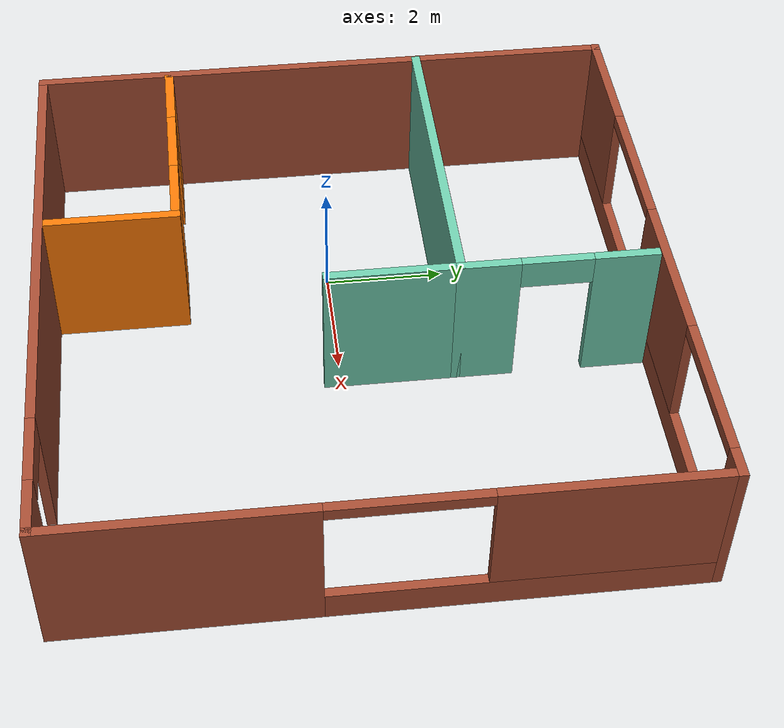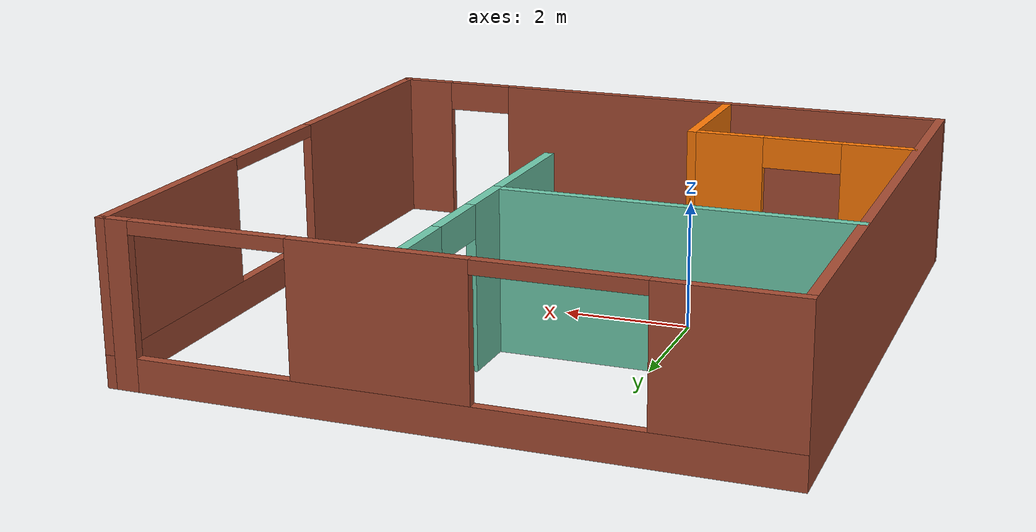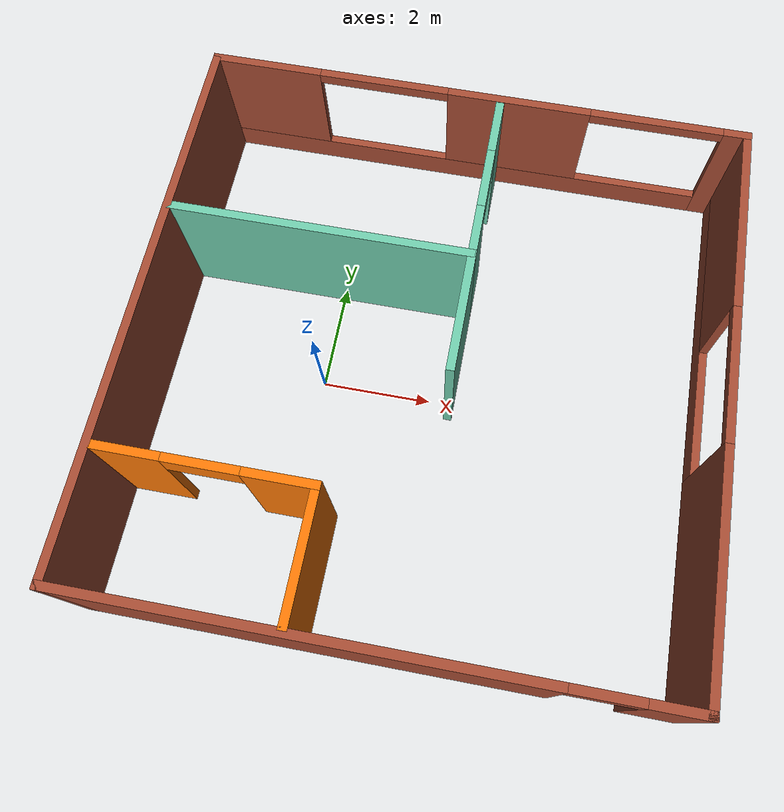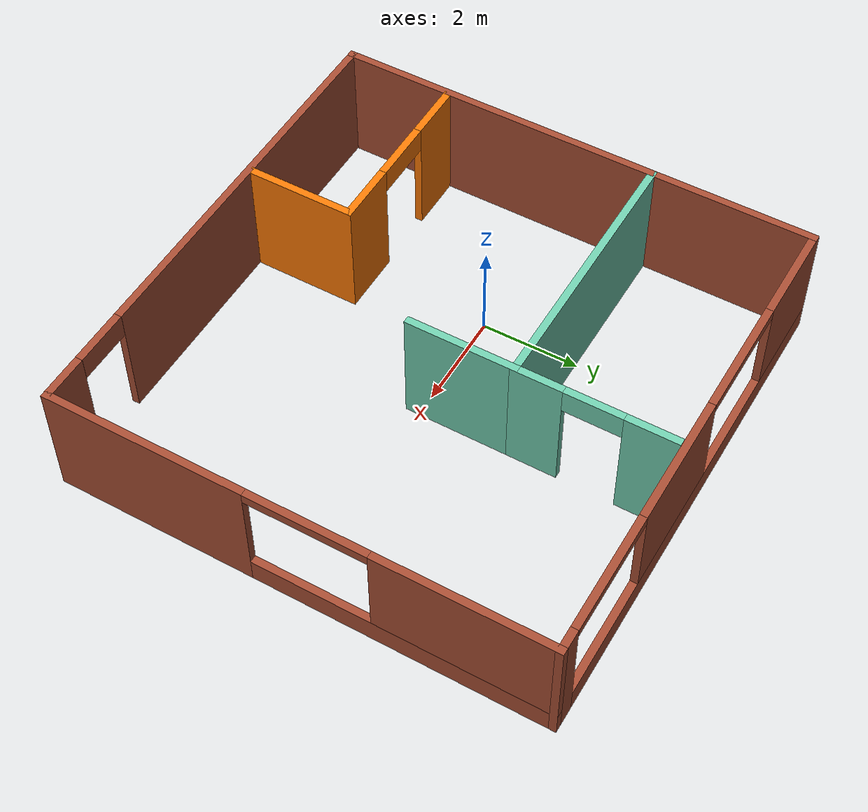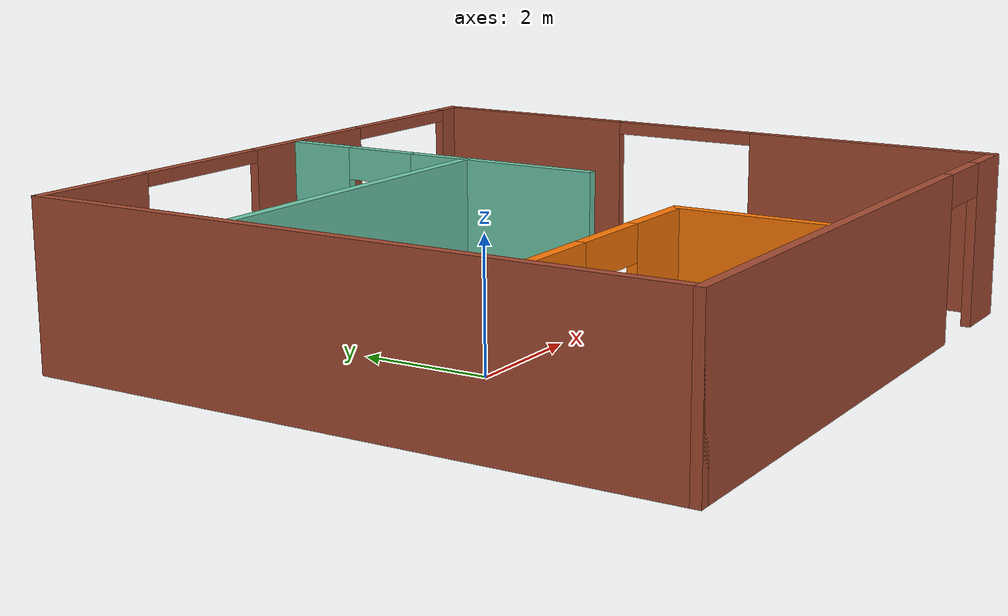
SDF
<?xml version='1.0'?>
<sdf version='1.7'>
  <model name='Building'>
    <pose>1.94951 0.222588 0 0 -0 0</pose>
    <link name='Wall_10'>
      <pose>-0 4.925 0 0 -0 3.14159</pose>
      <visual name='Wall_10_Visual_0'>
        <pose>-4.74655 0 1.25 0 -0 0</pose>
        <geometry>
          <box>
            <size>0.506908 0.15 2.5</size>
          </box>
        </geometry>
        <material>
          <script>
            <uri>file://media/materials/scripts/gazebo.material</uri>
            <name>Gazebo/Bricks</name>
          </script>
          <ambient>1 1 1 1</ambient>
        </material>
        <meta>
          <layer>0</layer>
        </meta>
      </visual>
      <collision name='Wall_10_Collision_0'>
        <geometry>
          <box>
            <size>0.506908 0.15 2.5</size>
          </box>
        </geometry>
        <pose>-4.74655 0 1.25 0 -0 0</pose>
      </collision>
      <visual name='Wall_10_Visual_1'>
        <pose>0.253454 0 0.25 0 -0 0</pose>
        <geometry>
          <box>
            <size>9.49309 0.15 0.5</size>
          </box>
        </geometry>
        <material>
          <script>
            <uri>file://media/materials/scripts/gazebo.material</uri>
            <name>Gazebo/Bricks</name>
          </script>
          <ambient>1 1 1 1</ambient>
        </material>
        <meta>
          <layer>0</layer>
        </meta>
      </visual>
      <collision name='Wall_10_Collision_1'>
        <geometry>
          <box>
            <size>9.49309 0.15 0.5</size>
          </box>
        </geometry>
        <pose>0.253454 0 0.25 0 -0 0</pose>
      </collision>
      <visual name='Wall_10_Visual_2'>
        <pose>-0.778092 0 1.5 0 -0 0</pose>
        <geometry>
          <box>
            <size>2.63 0.15 2</size>
          </box>
        </geometry>
        <material>
          <script>
            <uri>file://media/materials/scripts/gazebo.material</uri>
            <name>Gazebo/Bricks</name>
          </script>
          <ambient>1 1 1 1</ambient>
        </material>
        <meta>
          <layer>0</layer>
        </meta>
      </visual>
      <collision name='Wall_10_Collision_2'>
        <geometry>
          <box>
            <size>2.63 0.15 2</size>
          </box>
        </geometry>
        <pose>-0.778092 0 1.5 0 -0 0</pose>
      </collision>
      <visual name='Wall_10_Visual_3'>
        <pose>3.96845 0 1.5 0 -0 0</pose>
        <geometry>
          <box>
            <size>2.06309 0.15 2</size>
          </box>
        </geometry>
        <material>
          <script>
            <uri>file://media/materials/scripts/gazebo.material</uri>
            <name>Gazebo/Bricks</name>
          </script>
          <ambient>1 1 1 1</ambient>
        </material>
        <meta>
          <layer>0</layer>
        </meta>
      </visual>
      <collision name='Wall_10_Collision_3'>
        <geometry>
          <box>
            <size>2.06309 0.15 2</size>
          </box>
        </geometry>
        <pose>3.96845 0 1.5 0 -0 0</pose>
      </collision>
      <visual name='Wall_10_Visual_4'>
        <pose>-3.29309 0 2.4 0 -0 0</pose>
        <geometry>
          <box>
            <size>2.4 0.15 0.2</size>
          </box>
        </geometry>
        <material>
          <script>
            <uri>file://media/materials/scripts/gazebo.material</uri>
            <name>Gazebo/Bricks</name>
          </script>
          <ambient>1 1 1 1</ambient>
        </material>
        <meta>
          <layer>0</layer>
        </meta>
      </visual>
      <collision name='Wall_10_Collision_4'>
        <geometry>
          <box>
            <size>2.4 0.15 0.2</size>
          </box>
        </geometry>
        <pose>-3.29309 0 2.4 0 -0 0</pose>
      </collision>
      <visual name='Wall_10_Visual_5'>
        <pose>1.73691 0 2.4 0 -0 0</pose>
        <geometry>
          <box>
            <size>2.4 0.15 0.2</size>
          </box>
        </geometry>
        <material>
          <script>
            <uri>file://media/materials/scripts/gazebo.material</uri>
            <name>Gazebo/Bricks</name>
          </script>
          <ambient>1 1 1 1</ambient>
        </material>
        <meta>
          <layer>0</layer>
        </meta>
      </visual>
      <collision name='Wall_10_Collision_5'>
        <geometry>
          <box>
            <size>2.4 0.15 0.2</size>
          </box>
        </geometry>
        <pose>1.73691 0 2.4 0 -0 0</pose>
      </collision>
    </link>
    <link name='Wall_12'>
      <collision name='Wall_12_Collision'>
        <geometry>
          <box>
            <size>10 0.15 2.5</size>
          </box>
        </geometry>
        <pose>0 0 1.25 0 -0 0</pose>
      </collision>
      <visual name='Wall_12_Visual'>
        <pose>0 0 1.25 0 -0 0</pose>
        <geometry>
          <box>
            <size>10 0.15 2.5</size>
          </box>
        </geometry>
        <material>
          <script>
            <uri>file://media/materials/scripts/gazebo.material</uri>
            <name>Gazebo/Bricks</name>
          </script>
          <ambient>1 1 1 1</ambient>
        </material>
        <meta>
          <layer>0</layer>
        </meta>
      </visual>
      <pose>-4.925 -0 0 0 -0 1.5708</pose>
    </link>
    <link name='Wall_22'>
      <pose>-3.0416 -2.72457 0 0 -0 0</pose>
      <visual name='Wall_22_Visual_0'>
        <pose>-1.27765 0 1.25 0 -0 0</pose>
        <geometry>
          <box>
            <size>1.19469 0.15 2.5</size>
          </box>
        </geometry>
        <material>
          <script>
            <uri>file://media/materials/scripts/gazebo.material</uri>
            <name>Gazebo/Grey</name>
          </script>
          <ambient>0.996078 0.47451 0.0196078 1</ambient>
        </material>
        <meta>
          <layer>0</layer>
        </meta>
      </visual>
      <collision name='Wall_22_Collision_0'>
        <geometry>
          <box>
            <size>1.19469 0.15 2.5</size>
          </box>
        </geometry>
        <pose>-1.27765 0 1.25 0 -0 0</pose>
      </collision>
      <visual name='Wall_22_Visual_1'>
        <pose>1.23734 0 1.25 0 -0 0</pose>
        <geometry>
          <box>
            <size>1.27531 0.15 2.5</size>
          </box>
        </geometry>
        <material>
          <script>
            <uri>file://media/materials/scripts/gazebo.material</uri>
            <name>Gazebo/Grey</name>
          </script>
          <ambient>0.996078 0.47451 0.0196078 1</ambient>
        </material>
        <meta>
          <layer>0</layer>
        </meta>
      </visual>
      <collision name='Wall_22_Collision_1'>
        <geometry>
          <box>
            <size>1.27531 0.15 2.5</size>
          </box>
        </geometry>
        <pose>1.23734 0 1.25 0 -0 0</pose>
      </collision>
      <visual name='Wall_22_Visual_2'>
        <pose>-0.040311 0 2.25 0 -0 0</pose>
        <geometry>
          <box>
            <size>1.28 0.15 0.5</size>
          </box>
        </geometry>
        <material>
          <script>
            <uri>file://media/materials/scripts/gazebo.material</uri>
            <name>Gazebo/Grey</name>
          </script>
          <ambient>0.996078 0.47451 0.0196078 1</ambient>
        </material>
        <meta>
          <layer>0</layer>
        </meta>
      </visual>
      <collision name='Wall_22_Collision_2'>
        <geometry>
          <box>
            <size>1.28 0.15 0.5</size>
          </box>
        </geometry>
        <pose>-0.040311 0 2.25 0 -0 0</pose>
      </collision>
    </link>
    <link name='Wall_27'>
      <collision name='Wall_27_Collision'>
        <geometry>
          <box>
            <size>2.25 0.15 2.5</size>
          </box>
        </geometry>
        <pose>0 0 1.25 0 -0 0</pose>
      </collision>
      <visual name='Wall_27_Visual'>
        <pose>0 0 1.25 0 -0 0</pose>
        <geometry>
          <box>
            <size>2.25 0.15 2.5</size>
          </box>
        </geometry>
        <material>
          <script>
            <uri>file://media/materials/scripts/gazebo.material</uri>
            <name>Gazebo/Grey</name>
          </script>
          <ambient>0.996078 0.47451 0.0196078 1</ambient>
        </material>
        <meta>
          <layer>0</layer>
        </meta>
      </visual>
      <pose>-1.2416 -3.77457 0 0 -0 -1.5708</pose>
    </link>
    <link name='Wall_29'>
      <collision name='Wall_29_Collision'>
        <geometry>
          <box>
            <size>5.5 0.15 2.5</size>
          </box>
        </geometry>
        <pose>0 0 1.25 0 -0 0</pose>
      </collision>
      <visual name='Wall_29_Visual'>
        <pose>0 0 1.25 0 -0 0</pose>
        <geometry>
          <box>
            <size>5.5 0.15 2.5</size>
          </box>
        </geometry>
        <material>
          <script>
            <uri>file://media/materials/scripts/gazebo.material</uri>
            <name>Gazebo/Grey</name>
          </script>
          <ambient>0.435294 0.796078 0.67451 1</ambient>
        </material>
        <meta>
          <layer>0</layer>
        </meta>
      </visual>
      <pose>-2.23191 1.66808 0 0 -0 0</pose>
    </link>
    <link name='Wall_3'>
      <pose>-0 -4.925 0 0 -0 0</pose>
      <visual name='Wall_3_Visual_0'>
        <pose>-1.05345 0 1.25 0 -0 0</pose>
        <geometry>
          <box>
            <size>7.89309 0.15 2.5</size>
          </box>
        </geometry>
        <material>
          <script>
            <uri>file://media/materials/scripts/gazebo.material</uri>
            <name>Gazebo/Bricks</name>
          </script>
          <ambient>1 1 1 1</ambient>
        </material>
        <meta>
          <layer>0</layer>
        </meta>
      </visual>
      <collision name='Wall_3_Collision_0'>
        <geometry>
          <box>
            <size>7.89309 0.15 2.5</size>
          </box>
        </geometry>
        <pose>-1.05345 0 1.25 0 -0 0</pose>
      </collision>
      <visual name='Wall_3_Visual_1'>
        <pose>4.51155 0 1.25 0 -0 0</pose>
        <geometry>
          <box>
            <size>0.976908 0.15 2.5</size>
          </box>
        </geometry>
        <material>
          <script>
            <uri>file://media/materials/scripts/gazebo.material</uri>
            <name>Gazebo/Bricks</name>
          </script>
          <ambient>1 1 1 1</ambient>
        </material>
        <meta>
          <layer>0</layer>
        </meta>
      </visual>
      <collision name='Wall_3_Collision_1'>
        <geometry>
          <box>
            <size>0.976908 0.15 2.5</size>
          </box>
        </geometry>
        <pose>4.51155 0 1.25 0 -0 0</pose>
      </collision>
      <visual name='Wall_3_Visual_2'>
        <pose>3.45809 0 2.25 0 -0 0</pose>
        <geometry>
          <box>
            <size>1.13 0.15 0.5</size>
          </box>
        </geometry>
        <material>
          <script>
            <uri>file://media/materials/scripts/gazebo.material</uri>
            <name>Gazebo/Bricks</name>
          </script>
          <ambient>1 1 1 1</ambient>
        </material>
        <meta>
          <layer>0</layer>
        </meta>
      </visual>
      <collision name='Wall_3_Collision_2'>
        <geometry>
          <box>
            <size>1.13 0.15 0.5</size>
          </box>
        </geometry>
        <pose>3.45809 0 2.25 0 -0 0</pose>
      </collision>
    </link>
    <link name='Wall_31'>
      <collision name='Wall_31_Collision'>
        <geometry>
          <box>
            <size>2.25 0.15 2.5</size>
          </box>
        </geometry>
        <pose>0 0 1.25 0 -0 0</pose>
      </collision>
      <visual name='Wall_31_Visual'>
        <pose>0 0 1.25 0 -0 0</pose>
        <geometry>
          <box>
            <size>2.25 0.15 2.5</size>
          </box>
        </geometry>
        <material>
          <script>
            <uri>file://media/materials/scripts/gazebo.material</uri>
            <name>Gazebo/Grey</name>
          </script>
          <ambient>0.435294 0.796078 0.67451 1</ambient>
        </material>
        <meta>
          <layer>0</layer>
        </meta>
      </visual>
      <pose>0.443092 0.618082 0 0 -0 -1.5708</pose>
    </link>
    <link name='Wall_34'>
      <pose>0.443092 3.21808 0 0 -0 1.5708</pose>
      <visual name='Wall_34_Visual_0'>
        <pose>-1.11 0 1.25 0 -0 0</pose>
        <geometry>
          <box>
            <size>1.03 0.15 2.5</size>
          </box>
        </geometry>
        <material>
          <script>
            <uri>file://media/materials/scripts/gazebo.material</uri>
            <name>Gazebo/Grey</name>
          </script>
          <ambient>0.435294 0.796078 0.67451 1</ambient>
        </material>
        <meta>
          <layer>0</layer>
        </meta>
      </visual>
      <collision name='Wall_34_Collision_0'>
        <geometry>
          <box>
            <size>1.03 0.15 2.5</size>
          </box>
        </geometry>
        <pose>-1.11 0 1.25 0 -0 0</pose>
      </collision>
      <visual name='Wall_34_Visual_1'>
        <pose>1.095 0 1.25 0 -0 0</pose>
        <geometry>
          <box>
            <size>1.06 0.15 2.5</size>
          </box>
        </geometry>
        <material>
          <script>
            <uri>file://media/materials/scripts/gazebo.material</uri>
            <name>Gazebo/Grey</name>
          </script>
          <ambient>0.435294 0.796078 0.67451 1</ambient>
        </material>
        <meta>
          <layer>0</layer>
        </meta>
      </visual>
      <collision name='Wall_34_Collision_1'>
        <geometry>
          <box>
            <size>1.06 0.15 2.5</size>
          </box>
        </geometry>
        <pose>1.095 0 1.25 0 -0 0</pose>
      </collision>
      <visual name='Wall_34_Visual_2'>
        <pose>-0.015 0 2.25 0 -0 0</pose>
        <geometry>
          <box>
            <size>1.16 0.15 0.5</size>
          </box>
        </geometry>
        <material>
          <script>
            <uri>file://media/materials/scripts/gazebo.material</uri>
            <name>Gazebo/Grey</name>
          </script>
          <ambient>0.435294 0.796078 0.67451 1</ambient>
        </material>
        <meta>
          <layer>0</layer>
        </meta>
      </visual>
      <collision name='Wall_34_Collision_2'>
        <geometry>
          <box>
            <size>1.16 0.15 0.5</size>
          </box>
        </geometry>
        <pose>-0.015 0 2.25 0 -0 0</pose>
      </collision>
    </link>
    <link name='Wall_8'>
      <pose>4.925 -0 0 0 -0 1.5708</pose>
      <visual name='Wall_8_Visual_0'>
        <pose>-2.96129 0 1.25 0 -0 0</pose>
        <geometry>
          <box>
            <size>4.07741 0.15 2.5</size>
          </box>
        </geometry>
        <material>
          <script>
            <uri>file://media/materials/scripts/gazebo.material</uri>
            <name>Gazebo/Bricks</name>
          </script>
          <ambient>1 1 1 1</ambient>
        </material>
        <meta>
          <layer>0</layer>
        </meta>
      </visual>
      <collision name='Wall_8_Collision_0'>
        <geometry>
          <box>
            <size>4.07741 0.15 2.5</size>
          </box>
        </geometry>
        <pose>-2.96129 0 1.25 0 -0 0</pose>
      </collision>
      <visual name='Wall_8_Visual_1'>
        <pose>2.03871 0 0.25 0 -0 0</pose>
        <geometry>
          <box>
            <size>5.92259 0.15 0.5</size>
          </box>
        </geometry>
        <material>
          <script>
            <uri>file://media/materials/scripts/gazebo.material</uri>
            <name>Gazebo/Bricks</name>
          </script>
          <ambient>1 1 1 1</ambient>
        </material>
        <meta>
          <layer>0</layer>
        </meta>
      </visual>
      <collision name='Wall_8_Collision_1'>
        <geometry>
          <box>
            <size>5.92259 0.15 0.5</size>
          </box>
        </geometry>
        <pose>2.03871 0 0.25 0 -0 0</pose>
      </collision>
      <visual name='Wall_8_Visual_2'>
        <pose>3.23871 0 1.5 0 -0 0</pose>
        <geometry>
          <box>
            <size>3.52259 0.15 2</size>
          </box>
        </geometry>
        <material>
          <script>
            <uri>file://media/materials/scripts/gazebo.material</uri>
            <name>Gazebo/Bricks</name>
          </script>
          <ambient>1 1 1 1</ambient>
        </material>
        <meta>
          <layer>0</layer>
        </meta>
      </visual>
      <collision name='Wall_8_Collision_2'>
        <geometry>
          <box>
            <size>3.52259 0.15 2</size>
          </box>
        </geometry>
        <pose>3.23871 0 1.5 0 -0 0</pose>
      </collision>
      <visual name='Wall_8_Visual_3'>
        <pose>0.277413 0 2.4 0 -0 0</pose>
        <geometry>
          <box>
            <size>2.4 0.15 0.2</size>
          </box>
        </geometry>
        <material>
          <script>
            <uri>file://media/materials/scripts/gazebo.material</uri>
            <name>Gazebo/Bricks</name>
          </script>
          <ambient>1 1 1 1</ambient>
        </material>
        <meta>
          <layer>0</layer>
        </meta>
      </visual>
      <collision name='Wall_8_Collision_3'>
        <geometry>
          <box>
            <size>2.4 0.15 0.2</size>
          </box>
        </geometry>
        <pose>0.277413 0 2.4 0 -0 0</pose>
      </collision>
    </link>
    <static>1</static>
  </model>
</sdf>
